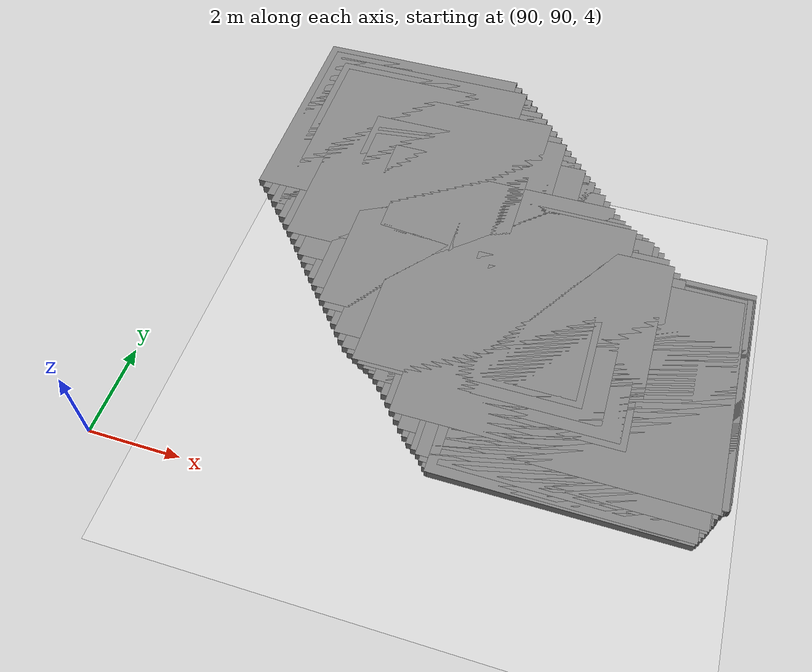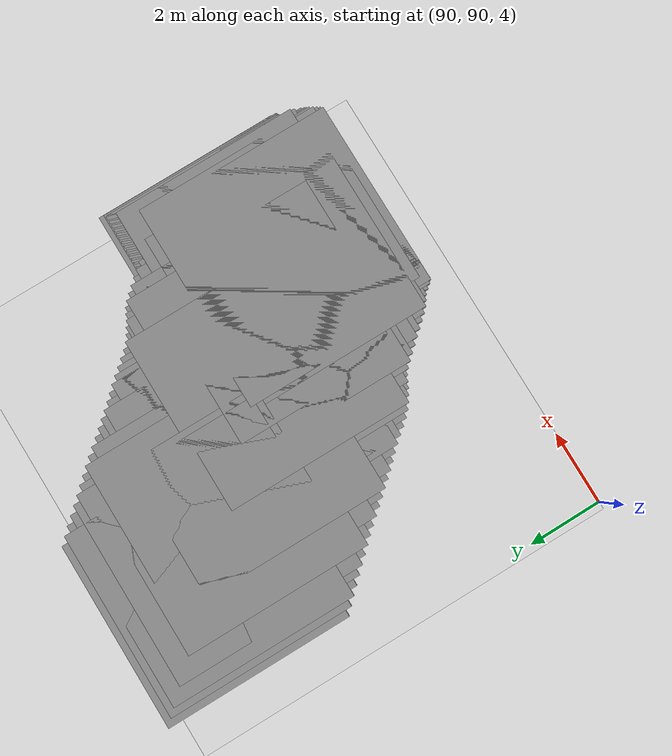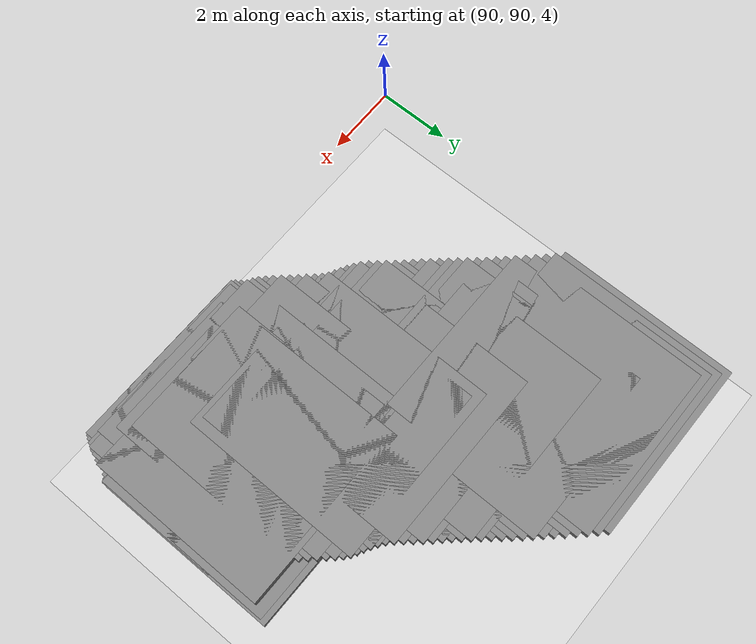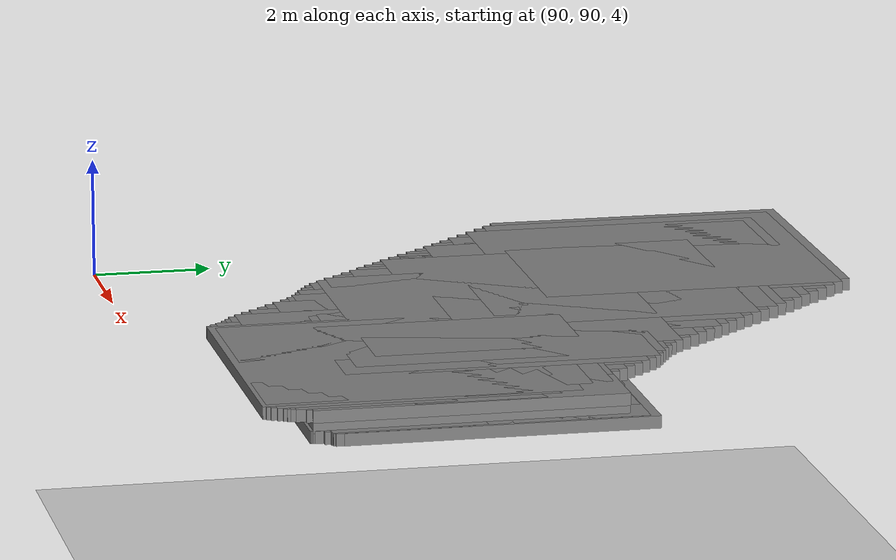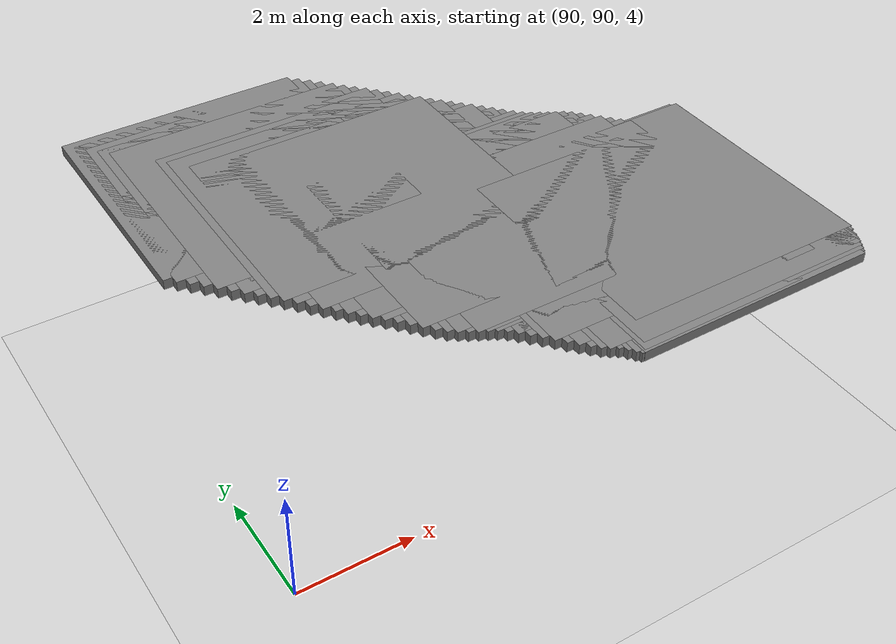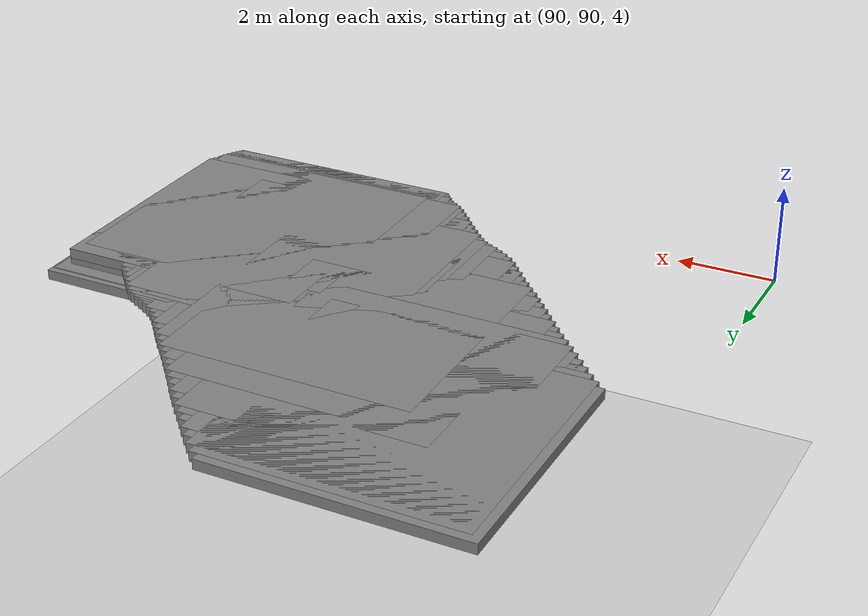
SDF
<sdf version="1.6">
 <world name="default">
  <include><uri>model://sun</uri></include>
  <include><uri>model://ground_plane</uri></include>
  <model name="road_segment_1">
   <static>true</static>
   <link name="link">
    <visual name="visual">
     <geometry><box><size>5.0 5.0 0.2</size></box></geometry>
     <material><ambient>0.5 0.5 0.5 1</ambient><diffuse>0.5 0.5 0.5 1</diffuse></material>
     <pose>99.99919580901489 94.41162049521488 4.367173193083842 0 0 0</pose>
    </visual>
    <collision name="collision">
     <geometry><box><size>5.0 5.0 0.2</size></box></geometry>
     <pose>99.99919580901489 94.41162049521488 4.367173193083842 0 0 0</pose>
    </collision>
   </link>
  </model>
  <model name="road_segment_2">
   <static>true</static>
   <link name="link">
    <visual name="visual">
     <geometry><box><size>5.0 5.0 0.2</size></box></geometry>
     <material><ambient>0.5 0.5 0.5 1</ambient><diffuse>0.5 0.5 0.5 1</diffuse></material>
     <pose>99.98874132622485 94.27984800195918 4.367173193083842 0 0 0</pose>
    </visual>
    <collision name="collision">
     <geometry><box><size>5.0 5.0 0.2</size></box></geometry>
     <pose>99.98874132622485 94.27984800195918 4.367173193083842 0 0 0</pose>
    </collision>
   </link>
  </model>
  <model name="road_segment_3">
   <static>true</static>
   <link name="link">
    <visual name="visual">
     <geometry><box><size>5.0 5.0 0.2</size></box></geometry>
     <material><ambient>0.5 0.5 0.5 1</ambient><diffuse>0.5 0.5 0.5 1</diffuse></material>
     <pose>99.97162354671508 94.24981613140372 4.367173193083842 0 0 0</pose>
    </visual>
    <collision name="collision">
     <geometry><box><size>5.0 5.0 0.2</size></box></geometry>
     <pose>99.97162354671508 94.24981613140372 4.367173193083842 0 0 0</pose>
    </collision>
   </link>
  </model>
  <model name="road_segment_4">
   <static>true</static>
   <link name="link">
    <visual name="visual">
     <geometry><box><size>5.0 5.0 0.2</size></box></geometry>
     <material><ambient>0.5 0.5 0.5 1</ambient><diffuse>0.5 0.5 0.5 1</diffuse></material>
     <pose>99.95933091309962 94.24634305793734 4.367173193083842 0 0 0</pose>
    </visual>
    <collision name="collision">
     <geometry><box><size>5.0 5.0 0.2</size></box></geometry>
     <pose>99.95933091309962 94.24634305793734 4.367173193083842 0 0 0</pose>
    </collision>
   </link>
  </model>
  <model name="road_segment_5">
   <static>true</static>
   <link name="link">
    <visual name="visual">
     <geometry><box><size>5.0 5.0 0.2</size></box></geometry>
     <material><ambient>0.5 0.5 0.5 1</ambient><diffuse>0.5 0.5 0.5 1</diffuse></material>
     <pose>99.94945085243947 94.2510419220385 4.367173193083842 0 0 0</pose>
    </visual>
    <collision name="collision">
     <geometry><box><size>5.0 5.0 0.2</size></box></geometry>
     <pose>99.94945085243947 94.2510419220385 4.367173193083842 0 0 0</pose>
    </collision>
   </link>
  </model>
  <model name="road_segment_6">
   <static>true</static>
   <link name="link">
    <visual name="visual">
     <geometry><box><size>5.0 5.0 0.2</size></box></geometry>
     <material><ambient>0.5 0.5 0.5 1</ambient><diffuse>0.5 0.5 0.5 1</diffuse></material>
     <pose>99.94060475161965 94.25553648769811 4.367173193083842 0 0 0</pose>
    </visual>
    <collision name="collision">
     <geometry><box><size>5.0 5.0 0.2</size></box></geometry>
     <pose>99.94060475161965 94.25553648769811 4.367173193083842 0 0 0</pose>
    </collision>
   </link>
  </model>
  <model name="road_segment_7">
   <static>true</static>
   <link name="link">
    <visual name="visual">
     <geometry><box><size>5.0 5.0 0.2</size></box></geometry>
     <material><ambient>0.5 0.5 0.5 1</ambient><diffuse>0.5 0.5 0.5 1</diffuse></material>
     <pose>99.94726804833937 94.25288060798702 4.367173193083842 0 0 0</pose>
    </visual>
    <collision name="collision">
     <geometry><box><size>5.0 5.0 0.2</size></box></geometry>
     <pose>99.94726804833937 94.25288060798702 4.367173193083842 0 0 0</pose>
    </collision>
   </link>
  </model>
  <model name="road_segment_8">
   <static>true</static>
   <link name="link">
    <visual name="visual">
     <geometry><box><size>5.0 5.0 0.2</size></box></geometry>
     <material><ambient>0.5 0.5 0.5 1</ambient><diffuse>0.5 0.5 0.5 1</diffuse></material>
     <pose>99.95749276227419 94.24879463920325 4.367173193083842 0 0 0</pose>
    </visual>
    <collision name="collision">
     <geometry><box><size>5.0 5.0 0.2</size></box></geometry>
     <pose>99.95749276227419 94.24879463920325 4.367173193083842 0 0 0</pose>
    </collision>
   </link>
  </model>
  <model name="road_segment_9">
   <static>true</static>
   <link name="link">
    <visual name="visual">
     <geometry><box><size>5.0 5.0 0.2</size></box></geometry>
     <material><ambient>0.5 0.5 0.5 1</ambient><diffuse>0.5 0.5 0.5 1</diffuse></material>
     <pose>99.95599926472343 94.24491296886103 4.367173193083842 0 0 0</pose>
    </visual>
    <collision name="collision">
     <geometry><box><size>5.0 5.0 0.2</size></box></geometry>
     <pose>99.95599926472343 94.24491296886103 4.367173193083842 0 0 0</pose>
    </collision>
   </link>
  </model>
  <model name="road_segment_10">
   <static>true</static>
   <link name="link">
    <visual name="visual">
     <geometry><box><size>5.0 5.0 0.2</size></box></geometry>
     <material><ambient>0.5 0.5 0.5 1</ambient><diffuse>0.5 0.5 0.5 1</diffuse></material>
     <pose>99.94807223930815 94.24654735637526 4.367173193083842 0 0 0</pose>
    </visual>
    <collision name="collision">
     <geometry><box><size>5.0 5.0 0.2</size></box></geometry>
     <pose>99.94807223930815 94.24654735637526 4.367173193083842 0 0 0</pose>
    </collision>
   </link>
  </model>
  <model name="road_segment_11">
   <static>true</static>
   <link name="link">
    <visual name="visual">
     <geometry><box><size>5.0 5.0 0.2</size></box></geometry>
     <material><ambient>0.5 0.5 0.5 1</ambient><diffuse>0.5 0.5 0.5 1</diffuse></material>
     <pose>99.93968567619876 94.24920323608272 4.367173193083842 0 0 0</pose>
    </visual>
    <collision name="collision">
     <geometry><box><size>5.0 5.0 0.2</size></box></geometry>
     <pose>99.93968567619876 94.24920323608272 4.367173193083842 0 0 0</pose>
    </collision>
   </link>
  </model>
  <model name="road_segment_12">
   <static>true</static>
   <link name="link">
    <visual name="visual">
     <geometry><box><size>5.0 5.0 0.2</size></box></geometry>
     <material><ambient>0.5 0.5 0.5 1</ambient><diffuse>0.5 0.5 0.5 1</diffuse></material>
     <pose>99.93704333440456 94.24511726729895 4.367173193083842 0 0 0</pose>
    </visual>
    <collision name="collision">
     <geometry><box><size>5.0 5.0 0.2</size></box></geometry>
     <pose>99.93704333440456 94.24511726729895 4.367173193083842 0 0 0</pose>
    </collision>
   </link>
  </model>
  <model name="road_segment_13">
   <static>true</static>
   <link name="link">
    <visual name="visual">
     <geometry><box><size>5.0 5.0 0.2</size></box></geometry>
     <material><ambient>0.5 0.5 0.5 1</ambient><diffuse>0.5 0.5 0.5 1</diffuse></material>
     <pose>99.93382657046413 94.23980550788403 4.367173193083842 0 0 0</pose>
    </visual>
    <collision name="collision">
     <geometry><box><size>5.0 5.0 0.2</size></box></geometry>
     <pose>99.93382657046413 94.23980550788403 4.367173193083842 0 0 0</pose>
    </collision>
   </link>
  </model>
  <model name="road_segment_14">
   <static>true</static>
   <link name="link">
    <visual name="visual">
     <geometry><box><size>5.0 5.0 0.2</size></box></geometry>
     <material><ambient>0.5 0.5 0.5 1</ambient><diffuse>0.5 0.5 0.5 1</diffuse></material>
     <pose>99.9281972335684 94.23224646563752 4.367173193083842 0 0 0</pose>
    </visual>
    <collision name="collision">
     <geometry><box><size>5.0 5.0 0.2</size></box></geometry>
     <pose>99.9281972335684 94.23224646563752 4.367173193083842 0 0 0</pose>
    </collision>
   </link>
  </model>
  <model name="road_segment_15">
   <static>true</static>
   <link name="link">
    <visual name="visual">
     <geometry><box><size>5.0 5.0 0.2</size></box></geometry>
     <material><ambient>0.5 0.5 0.5 1</ambient><diffuse>0.5 0.5 0.5 1</diffuse></material>
     <pose>99.92325720323834 94.22734330309481 4.367173193083842 0 0 0</pose>
    </visual>
    <collision name="collision">
     <geometry><box><size>5.0 5.0 0.2</size></box></geometry>
     <pose>99.92325720323834 94.22734330309481 4.367173193083842 0 0 0</pose>
    </collision>
   </link>
  </model>
  <model name="road_segment_16">
   <static>true</static>
   <link name="link">
    <visual name="visual">
     <geometry><box><size>5.0 5.0 0.2</size></box></geometry>
     <material><ambient>0.5 0.5 0.5 1</ambient><diffuse>0.5 0.5 0.5 1</diffuse></material>
     <pose>99.91728321306792 94.22121434991735 4.367173193083842 0 0 0</pose>
    </visual>
    <collision name="collision">
     <geometry><box><size>5.0 5.0 0.2</size></box></geometry>
     <pose>99.91728321306792 94.22121434991735 4.367173193083842 0 0 0</pose>
    </collision>
   </link>
  </model>
  <model name="road_segment_17">
   <static>true</static>
   <link name="link">
    <visual name="visual">
     <geometry><box><size>5.0 5.0 0.2</size></box></geometry>
     <material><ambient>0.5 0.5 0.5 1</ambient><diffuse>0.5 0.5 0.5 1</diffuse></material>
     <pose>99.85708377370247 94.13152733512686 4.367173193083842 0 0 0</pose>
    </visual>
    <collision name="collision">
     <geometry><box><size>5.0 5.0 0.2</size></box></geometry>
     <pose>99.85708377370247 94.13152733512686 4.367173193083842 0 0 0</pose>
    </collision>
   </link>
  </model>
  <model name="road_segment_18">
   <static>true</static>
   <link name="link">
    <visual name="visual">
     <geometry><box><size>5.0 5.0 0.2</size></box></geometry>
     <material><ambient>0.5 0.5 0.5 1</ambient><diffuse>0.5 0.5 0.5 1</diffuse></material>
     <pose>99.77758375072713 93.99342159025576 4.367173193083842 0 0 0</pose>
    </visual>
    <collision name="collision">
     <geometry><box><size>5.0 5.0 0.2</size></box></geometry>
     <pose>99.77758375072713 93.99342159025576 4.367173193083842 0 0 0</pose>
    </collision>
   </link>
  </model>
  <model name="road_segment_19">
   <static>true</static>
   <link name="link">
    <visual name="visual">
     <geometry><box><size>5.0 5.0 0.2</size></box></geometry>
     <material><ambient>0.5 0.5 0.5 1</ambient><diffuse>0.5 0.5 0.5 1</diffuse></material>
     <pose>99.74886264416756 93.9241644193805 4.367173193083842 0 0 0</pose>
    </visual>
    <collision name="collision">
     <geometry><box><size>5.0 5.0 0.2</size></box></geometry>
     <pose>99.74886264416756 93.9241644193805 4.367173193083842 0 0 0</pose>
    </collision>
   </link>
  </model>
  <model name="road_segment_20">
   <static>true</static>
   <link name="link">
    <visual name="visual">
     <geometry><box><size>5.0 5.0 0.2</size></box></geometry>
     <material><ambient>0.5 0.5 0.5 1</ambient><diffuse>0.5 0.5 0.5 1</diffuse></material>
     <pose>99.74599053351812 93.91987415215881 4.367173193083842 0 0 0</pose>
    </visual>
    <collision name="collision">
     <geometry><box><size>5.0 5.0 0.2</size></box></geometry>
     <pose>99.74599053351812 93.91987415215881 4.367173193083842 0 0 0</pose>
    </collision>
   </link>
  </model>
  <model name="road_segment_21">
   <static>true</static>
   <link name="link">
    <visual name="visual">
     <geometry><box><size>5.0 5.0 0.2</size></box></geometry>
     <material><ambient>0.5 0.5 0.5 1</ambient><diffuse>0.5 0.5 0.5 1</diffuse></material>
     <pose>99.75196452368854 93.93499223665549 4.367173193083842 0 0 0</pose>
    </visual>
    <collision name="collision">
     <geometry><box><size>5.0 5.0 0.2</size></box></geometry>
     <pose>99.75196452368854 93.93499223665549 4.367173193083842 0 0 0</pose>
    </collision>
   </link>
  </model>
  <model name="road_segment_22">
   <static>true</static>
   <link name="link">
    <visual name="visual">
     <geometry><box><size>5.0 5.0 0.2</size></box></geometry>
     <material><ambient>0.5 0.5 0.5 1</ambient><diffuse>0.5 0.5 0.5 1</diffuse></material>
     <pose>99.75701943843806 93.95154041022849 4.367173193083842 0 0 0</pose>
    </visual>
    <collision name="collision">
     <geometry><box><size>5.0 5.0 0.2</size></box></geometry>
     <pose>99.75701943843806 93.95154041022849 4.367173193083842 0 0 0</pose>
    </collision>
   </link>
  </model>
  <model name="road_segment_23">
   <static>true</static>
   <link name="link">
    <visual name="visual">
     <geometry><box><size>5.0 5.0 0.2</size></box></geometry>
     <material><ambient>0.5 0.5 0.5 1</ambient><diffuse>0.5 0.5 0.5 1</diffuse></material>
     <pose>99.75943201137704 93.96543270409404 4.367173193083842 0 0 0</pose>
    </visual>
    <collision name="collision">
     <geometry><box><size>5.0 5.0 0.2</size></box></geometry>
     <pose>99.75943201137704 93.96543270409404 4.367173193083842 0 0 0</pose>
    </collision>
   </link>
  </model>
  <model name="road_segment_24">
   <static>true</static>
   <link name="link">
    <visual name="visual">
     <geometry><box><size>5.0 5.0 0.2</size></box></geometry>
     <material><ambient>0.5 0.5 0.5 1</ambient><diffuse>0.5 0.5 0.5 1</diffuse></material>
     <pose>99.76161481547715 93.96767998692202 4.367173193083842 0 0 0</pose>
    </visual>
    <collision name="collision">
     <geometry><box><size>5.0 5.0 0.2</size></box></geometry>
     <pose>99.76161481547715 93.96767998692202 4.367173193083842 0 0 0</pose>
    </collision>
   </link>
  </model>
  <model name="road_segment_25">
   <static>true</static>
   <link name="link">
    <visual name="visual">
     <geometry><box><size>5.0 5.0 0.2</size></box></geometry>
     <material><ambient>0.5 0.5 0.5 1</ambient><diffuse>0.5 0.5 0.5 1</diffuse></material>
     <pose>99.76264877531746 93.96727139004255 4.367173193083842 0 0 0</pose>
    </visual>
    <collision name="collision">
     <geometry><box><size>5.0 5.0 0.2</size></box></geometry>
     <pose>99.76264877531746 93.96727139004255 4.367173193083842 0 0 0</pose>
    </collision>
   </link>
  </model>
  <model name="road_segment_26">
   <static>true</static>
   <link name="link">
    <visual name="visual">
     <geometry><box><size>5.0 5.0 0.2</size></box></geometry>
     <material><ambient>0.5 0.5 0.5 1</ambient><diffuse>0.5 0.5 0.5 1</diffuse></material>
     <pose>99.76299342859213 93.97013156819156 4.529971770583577 0 0 0</pose>
    </visual>
    <collision name="collision">
     <geometry><box><size>5.0 5.0 0.2</size></box></geometry>
     <pose>99.76299342859213 93.97013156819156 4.529971770583577 0 0 0</pose>
    </collision>
   </link>
  </model>
  <model name="road_segment_27">
   <static>true</static>
   <link name="link">
    <visual name="visual">
     <geometry><box><size>5.0 5.0 0.2</size></box></geometry>
     <material><ambient>0.5 0.5 0.5 1</ambient><diffuse>0.5 0.5 0.5 1</diffuse></material>
     <pose>99.76471669498179 93.97340034321638 4.692770348083311 0 0 0</pose>
    </visual>
    <collision name="collision">
     <geometry><box><size>5.0 5.0 0.2</size></box></geometry>
     <pose>99.76471669498179 93.97340034321638 4.692770348083311 0 0 0</pose>
    </collision>
   </link>
  </model>
  <model name="road_segment_28">
   <static>true</static>
   <link name="link">
    <visual name="visual">
     <geometry><box><size>5.0 5.0 0.2</size></box></geometry>
     <material><ambient>0.5 0.5 0.5 1</ambient><diffuse>0.5 0.5 0.5 1</diffuse></material>
     <pose>99.76655484580722 93.97258314946109 4.692770348083311 0 0 0</pose>
    </visual>
    <collision name="collision">
     <geometry><box><size>5.0 5.0 0.2</size></box></geometry>
     <pose>99.76655484580722 93.97258314946109 4.692770348083311 0 0 0</pose>
    </collision>
   </link>
  </model>
  <model name="road_segment_29">
   <static>true</static>
   <link name="link">
    <visual name="visual">
     <geometry><box><size>5.0 5.0 0.2</size></box></geometry>
     <material><ambient>0.5 0.5 0.5 1</ambient><diffuse>0.5 0.5 0.5 1</diffuse></material>
     <pose>99.7668994990982 93.97033586663309 4.692770348083311 0 0 0</pose>
    </visual>
    <collision name="collision">
     <geometry><box><size>5.0 5.0 0.2</size></box></geometry>
     <pose>99.7668994990982 93.97033586663309 4.692770348083311 0 0 0</pose>
    </collision>
   </link>
  </model>
  <model name="road_segment_30">
   <static>true</static>
   <link name="link">
    <visual name="visual">
     <geometry><box><size>5.0 5.0 0.2</size></box></geometry>
     <material><ambient>0.5 0.5 0.5 1</ambient><diffuse>0.5 0.5 0.5 1</diffuse></material>
     <pose>99.76724415237288 93.97054016507101 4.692770348083311 0 0 0</pose>
    </visual>
    <collision name="collision">
     <geometry><box><size>5.0 5.0 0.2</size></box></geometry>
     <pose>99.76724415237288 93.97054016507101 4.692770348083311 0 0 0</pose>
    </collision>
   </link>
  </model>
  <model name="road_segment_31">
   <static>true</static>
   <link name="link">
    <visual name="visual">
     <geometry><box><size>5.0 5.0 0.2</size></box></geometry>
     <material><ambient>0.5 0.5 0.5 1</ambient><diffuse>0.5 0.5 0.5 1</diffuse></material>
     <pose>99.72324341711263 93.8749284955446 4.692770348083311 0 0 0</pose>
    </visual>
    <collision name="collision">
     <geometry><box><size>5.0 5.0 0.2</size></box></geometry>
     <pose>99.72324341711263 93.8749284955446 4.692770348083311 0 0 0</pose>
    </collision>
   </link>
  </model>
  <model name="road_segment_32">
   <static>true</static>
   <link name="link">
    <visual name="visual">
     <geometry><box><size>5.0 5.0 0.2</size></box></geometry>
     <material><ambient>0.5 0.5 0.5 1</ambient><diffuse>0.5 0.5 0.5 1</diffuse></material>
     <pose>99.65741464086776 93.72354335212898 4.692770348083311 0 0 0</pose>
    </visual>
    <collision name="collision">
     <geometry><box><size>5.0 5.0 0.2</size></box></geometry>
     <pose>99.65741464086776 93.72354335212898 4.692770348083311 0 0 0</pose>
    </collision>
   </link>
  </model>
  <model name="road_segment_33">
   <static>true</static>
   <link name="link">
    <visual name="visual">
     <geometry><box><size>5.0 5.0 0.2</size></box></geometry>
     <material><ambient>0.5 0.5 0.5 1</ambient><diffuse>0.5 0.5 0.5 1</diffuse></material>
     <pose>99.62294931297669 93.64488845305141 4.692770348083311 0 0 0</pose>
    </visual>
    <collision name="collision">
     <geometry><box><size>5.0 5.0 0.2</size></box></geometry>
     <pose>99.62294931297669 93.64488845305141 4.692770348083311 0 0 0</pose>
    </collision>
   </link>
  </model>
  <model name="road_segment_34">
   <static>true</static>
   <link name="link">
    <visual name="visual">
     <geometry><box><size>5.0 5.0 0.2</size></box></geometry>
     <material><ambient>0.5 0.5 0.5 1</ambient><diffuse>0.5 0.5 0.5 1</diffuse></material>
     <pose>99.59939800558607 93.59728691672612 4.692770348083311 0 0 0</pose>
    </visual>
    <collision name="collision">
     <geometry><box><size>5.0 5.0 0.2</size></box></geometry>
     <pose>99.59939800558607 93.59728691672612 4.692770348083311 0 0 0</pose>
    </collision>
   </link>
  </model>
  <model name="road_segment_35">
   <static>true</static>
   <link name="link">
    <visual name="visual">
     <geometry><box><size>5.0 5.0 0.2</size></box></geometry>
     <material><ambient>0.5 0.5 0.5 1</ambient><diffuse>0.5 0.5 0.5 1</diffuse></material>
     <pose>99.57297458754604 93.54049195064007 4.692770348083311 0 0 0</pose>
    </visual>
    <collision name="collision">
     <geometry><box><size>5.0 5.0 0.2</size></box></geometry>
     <pose>99.57297458754604 93.54049195064007 4.692770348083311 0 0 0</pose>
    </collision>
   </link>
  </model>
  <model name="road_segment_36">
   <static>true</static>
   <link name="link">
    <visual name="visual">
     <geometry><box><size>5.0 5.0 0.2</size></box></geometry>
     <material><ambient>0.5 0.5 0.5 1</ambient><diffuse>0.5 0.5 0.5 1</diffuse></material>
     <pose>99.52748035475136 93.45570809838866 4.692770348083311 0 0 0</pose>
    </visual>
    <collision name="collision">
     <geometry><box><size>5.0 5.0 0.2</size></box></geometry>
     <pose>99.52748035475136 93.45570809838866 4.692770348083311 0 0 0</pose>
    </collision>
   </link>
  </model>
  <model name="road_segment_37">
   <static>true</static>
   <link name="link">
    <visual name="visual">
     <geometry><box><size>5.0 5.0 0.2</size></box></geometry>
     <material><ambient>0.5 0.5 0.5 1</ambient><diffuse>0.5 0.5 0.5 1</diffuse></material>
     <pose>99.47417398096084 93.36867696330562 4.692770348083311 0 0 0</pose>
    </visual>
    <collision name="collision">
     <geometry><box><size>5.0 5.0 0.2</size></box></geometry>
     <pose>99.47417398096084 93.36867696330562 4.692770348083311 0 0 0</pose>
    </collision>
   </link>
  </model>
  <model name="road_segment_38">
   <static>true</static>
   <link name="link">
    <visual name="visual">
     <geometry><box><size>5.0 5.0 0.2</size></box></geometry>
     <material><ambient>0.5 0.5 0.5 1</ambient><diffuse>0.5 0.5 0.5 1</diffuse></material>
     <pose>99.42833509487517 93.30146277682042 4.692770348083311 0 0 0</pose>
    </visual>
    <collision name="collision">
     <geometry><box><size>5.0 5.0 0.2</size></box></geometry>
     <pose>99.42833509487517 93.30146277682042 4.692770348083311 0 0 0</pose>
    </collision>
   </link>
  </model>
  <model name="road_segment_39">
   <static>true</static>
   <link name="link">
    <visual name="visual">
     <geometry><box><size>5.0 5.0 0.2</size></box></geometry>
     <material><ambient>0.5 0.5 0.5 1</ambient><diffuse>0.5 0.5 0.5 1</diffuse></material>
     <pose>99.38421947519548 93.24977527171137 4.692770348083311 0 0 0</pose>
    </visual>
    <collision name="collision">
     <geometry><box><size>5.0 5.0 0.2</size></box></geometry>
     <pose>99.38421947519548 93.24977527171137 4.692770348083311 0 0 0</pose>
    </collision>
   </link>
  </model>
  <model name="road_segment_40">
   <static>true</static>
   <link name="link">
    <visual name="visual">
     <geometry><box><size>5.0 5.0 0.2</size></box></geometry>
     <material><ambient>0.5 0.5 0.5 1</ambient><diffuse>0.5 0.5 0.5 1</diffuse></material>
     <pose>99.33401498092593 93.25447413581252 4.692770348083311 0 0 0</pose>
    </visual>
    <collision name="collision">
     <geometry><box><size>5.0 5.0 0.2</size></box></geometry>
     <pose>99.33401498092593 93.25447413581252 4.692770348083311 0 0 0</pose>
    </collision>
   </link>
  </model>
  <model name="road_segment_41">
   <static>true</static>
   <link name="link">
    <visual name="visual">
     <geometry><box><size>5.0 5.0 0.2</size></box></geometry>
     <material><ambient>0.5 0.5 0.5 1</ambient><diffuse>0.5 0.5 0.5 1</diffuse></material>
     <pose>99.26232709893011 93.32230121761509 4.692770348083311 0 0 0</pose>
    </visual>
    <collision name="collision">
     <geometry><box><size>5.0 5.0 0.2</size></box></geometry>
     <pose>99.26232709893011 93.32230121761509 4.692770348083311 0 0 0</pose>
    </collision>
   </link>
  </model>
  <model name="road_segment_42">
   <static>true</static>
   <link name="link">
    <visual name="visual">
     <geometry><box><size>5.0 5.0 0.2</size></box></geometry>
     <material><ambient>0.5 0.5 0.5 1</ambient><diffuse>0.5 0.5 0.5 1</diffuse></material>
     <pose>99.17524470381417 93.42996649505491 4.692770348083311 0 0 0</pose>
    </visual>
    <collision name="collision">
     <geometry><box><size>5.0 5.0 0.2</size></box></geometry>
     <pose>99.17524470381417 93.42996649505491 4.692770348083311 0 0 0</pose>
    </collision>
   </link>
  </model>
  <model name="road_segment_43">
   <static>true</static>
   <link name="link">
    <visual name="visual">
     <geometry><box><size>5.0 5.0 0.2</size></box></geometry>
     <material><ambient>0.5 0.5 0.5 1</ambient><diffuse>0.5 0.5 0.5 1</diffuse></material>
     <pose>99.07242314230346 93.54008335376062 4.692770348083311 0 0 0</pose>
    </visual>
    <collision name="collision">
     <geometry><box><size>5.0 5.0 0.2</size></box></geometry>
     <pose>99.07242314230346 93.54008335376062 4.692770348083311 0 0 0</pose>
    </collision>
   </link>
  </model>
  <model name="road_segment_44">
   <static>true</static>
   <link name="link">
    <visual name="visual">
     <geometry><box><size>5.0 5.0 0.2</size></box></geometry>
     <material><ambient>0.5 0.5 0.5 1</ambient><diffuse>0.5 0.5 0.5 1</diffuse></material>
     <pose>98.95328799226809 93.61730816376188 4.692770348083311 0 0 0</pose>
    </visual>
    <collision name="collision">
     <geometry><box><size>5.0 5.0 0.2</size></box></geometry>
     <pose>98.95328799226809 93.61730816376188 4.692770348083311 0 0 0</pose>
    </collision>
   </link>
  </model>
  <model name="road_segment_45">
   <static>true</static>
   <link name="link">
    <visual name="visual">
     <geometry><box><size>5.0 5.0 0.2</size></box></geometry>
     <material><ambient>0.5 0.5 0.5 1</ambient><diffuse>0.5 0.5 0.5 1</diffuse></material>
     <pose>98.83242957584305 93.70270491133068 4.692770348083311 0 0 0</pose>
    </visual>
    <collision name="collision">
     <geometry><box><size>5.0 5.0 0.2</size></box></geometry>
     <pose>98.83242957584305 93.70270491133068 4.692770348083311 0 0 0</pose>
    </collision>
   </link>
  </model>
  <model name="road_segment_46">
   <static>true</static>
   <link name="link">
    <visual name="visual">
     <geometry><box><size>5.0 5.0 0.2</size></box></geometry>
     <material><ambient>0.5 0.5 0.5 1</ambient><diffuse>0.5 0.5 0.5 1</diffuse></material>
     <pose>98.70835439547758 93.82262809511818 4.692770348083311 0 0 0</pose>
    </visual>
    <collision name="collision">
     <geometry><box><size>5.0 5.0 0.2</size></box></geometry>
     <pose>98.70835439547758 93.82262809511818 4.692770348083311 0 0 0</pose>
    </collision>
   </link>
  </model>
  <model name="road_segment_47">
   <static>true</static>
   <link name="link">
    <visual name="visual">
     <geometry><box><size>5.0 5.0 0.2</size></box></geometry>
     <material><ambient>0.5 0.5 0.5 1</ambient><diffuse>0.5 0.5 0.5 1</diffuse></material>
     <pose>98.57796057166706 93.96134673531026 4.692770348083311 0 0 0</pose>
    </visual>
    <collision name="collision">
     <geometry><box><size>5.0 5.0 0.2</size></box></geometry>
     <pose>98.57796057166706 93.96134673531026 4.692770348083311 0 0 0</pose>
    </collision>
   </link>
  </model>
  <model name="road_segment_48">
   <static>true</static>
   <link name="link">
    <visual name="visual">
     <geometry><box><size>5.0 5.0 0.2</size></box></geometry>
     <material><ambient>0.5 0.5 0.5 1</ambient><diffuse>0.5 0.5 0.5 1</diffuse></material>
     <pose>98.44297137080113 94.11252758028795 4.692770348083311 0 0 0</pose>
    </visual>
    <collision name="collision">
     <geometry><box><size>5.0 5.0 0.2</size></box></geometry>
     <pose>98.44297137080113 94.11252758028795 4.692770348083311 0 0 0</pose>
    </collision>
   </link>
  </model>
  <model name="road_segment_49">
   <static>true</static>
   <link name="link">
    <visual name="visual">
     <geometry><box><size>5.0 5.0 0.2</size></box></geometry>
     <material><ambient>0.5 0.5 0.5 1</ambient><diffuse>0.5 0.5 0.5 1</diffuse></material>
     <pose>98.30465052157534 94.2684072893668 4.692770348083311 0 0 0</pose>
    </visual>
    <collision name="collision">
     <geometry><box><size>5.0 5.0 0.2</size></box></geometry>
     <pose>98.30465052157534 94.2684072893668 4.692770348083311 0 0 0</pose>
    </collision>
   </link>
  </model>
  <model name="road_segment_50">
   <static>true</static>
   <link name="link">
    <visual name="visual">
     <geometry><box><size>5.0 5.0 0.2</size></box></geometry>
     <material><ambient>0.5 0.5 0.5 1</ambient><diffuse>0.5 0.5 0.5 1</diffuse></material>
     <pose>98.16518082807345 94.42489989376304 4.692770348083311 0 0 0</pose>
    </visual>
    <collision name="collision">
     <geometry><box><size>5.0 5.0 0.2</size></box></geometry>
     <pose>98.16518082807345 94.42489989376304 4.692770348083311 0 0 0</pose>
    </collision>
   </link>
  </model>
  <model name="road_segment_51">
   <static>true</static>
   <link name="link">
    <visual name="visual">
     <geometry><box><size>5.0 5.0 0.2</size></box></geometry>
     <material><ambient>0.5 0.5 0.5 1</ambient><diffuse>0.5 0.5 0.5 1</diffuse></material>
     <pose>98.02789393867164 94.57975811064503 4.692770348083311 0 0 0</pose>
    </visual>
    <collision name="collision">
     <geometry><box><size>5.0 5.0 0.2</size></box></geometry>
     <pose>98.02789393867164 94.57975811064503 4.692770348083311 0 0 0</pose>
    </collision>
   </link>
  </model>
  <model name="road_segment_52">
   <static>true</static>
   <link name="link">
    <visual name="visual">
     <geometry><box><size>5.0 5.0 0.2</size></box></geometry>
     <material><ambient>0.5 0.5 0.5 1</ambient><diffuse>0.5 0.5 0.5 1</diffuse></material>
     <pose>97.89267496896682 94.72807877747371 4.692770348083311 0 0 0</pose>
    </visual>
    <collision name="collision">
     <geometry><box><size>5.0 5.0 0.2</size></box></geometry>
     <pose>97.89267496896682 94.72807877747371 4.692770348083311 0 0 0</pose>
    </collision>
   </link>
  </model>
  <model name="road_segment_53">
   <static>true</static>
   <link name="link">
    <visual name="visual">
     <geometry><box><size>5.0 5.0 0.2</size></box></geometry>
     <material><ambient>0.5 0.5 0.5 1</ambient><diffuse>0.5 0.5 0.5 1</diffuse></material>
     <pose>97.76205137630109 94.86271144888204 4.692770348083311 0 0 0</pose>
    </visual>
    <collision name="collision">
     <geometry><box><size>5.0 5.0 0.2</size></box></geometry>
     <pose>97.76205137630109 94.86271144888204 4.692770348083311 0 0 0</pose>
    </collision>
   </link>
  </model>
  <model name="road_segment_54">
   <static>true</static>
   <link name="link">
    <visual name="visual">
     <geometry><box><size>5.0 5.0 0.2</size></box></geometry>
     <material><ambient>0.5 0.5 0.5 1</ambient><diffuse>0.5 0.5 0.5 1</diffuse></material>
     <pose>97.63188732132944 94.96833374192815 4.692770348083311 0 0 0</pose>
    </visual>
    <collision name="collision">
     <geometry><box><size>5.0 5.0 0.2</size></box></geometry>
     <pose>97.63188732132944 94.96833374192815 4.692770348083311 0 0 0</pose>
    </collision>
   </link>
  </model>
  <model name="road_segment_55">
   <static>true</static>
   <link name="link">
    <visual name="visual">
     <geometry><box><size>5.0 5.0 0.2</size></box></geometry>
     <material><ambient>0.5 0.5 0.5 1</ambient><diffuse>0.5 0.5 0.5 1</diffuse></material>
     <pose>97.49460043194398 95.04433276129464 4.692770348083311 0 0 0</pose>
    </visual>
    <collision name="collision">
     <geometry><box><size>5.0 5.0 0.2</size></box></geometry>
     <pose>97.49460043194398 95.04433276129464 4.692770348083311 0 0 0</pose>
    </collision>
   </link>
  </model>
  <model name="road_segment_56">
   <static>true</static>
   <link name="link">
    <visual name="visual">
     <geometry><box><size>5.0 5.0 0.2</size></box></geometry>
     <material><ambient>0.5 0.5 0.5 1</ambient><diffuse>0.5 0.5 0.5 1</diffuse></material>
     <pose>97.35099489911343 95.11604151343946 4.692770348083311 0 0 0</pose>
    </visual>
    <collision name="collision">
     <geometry><box><size>5.0 5.0 0.2</size></box></geometry>
     <pose>97.35099489911343 95.11604151343946 4.692770348083311 0 0 0</pose>
    </collision>
   </link>
  </model>
  <model name="road_segment_57">
   <static>true</static>
   <link name="link">
    <visual name="visual">
     <geometry><box><size>5.0 5.0 0.2</size></box></geometry>
     <material><ambient>0.5 0.5 0.5 1</ambient><diffuse>0.5 0.5 0.5 1</diffuse></material>
     <pose>97.20509167776336 95.20082536569087 4.692770348083311 0 0 0</pose>
    </visual>
    <collision name="collision">
     <geometry><box><size>5.0 5.0 0.2</size></box></geometry>
     <pose>97.20509167776336 95.20082536569087 4.692770348083311 0 0 0</pose>
    </collision>
   </link>
  </model>
  <model name="road_segment_58">
   <static>true</static>
   <link name="link">
    <visual name="visual">
     <geometry><box><size>5.0 5.0 0.2</size></box></geometry>
     <material><ambient>0.5 0.5 0.5 1</ambient><diffuse>0.5 0.5 0.5 1</diffuse></material>
     <pose>97.05620146132807 95.29255536487506 4.692770348083311 0 0 0</pose>
    </visual>
    <collision name="collision">
     <geometry><box><size>5.0 5.0 0.2</size></box></geometry>
     <pose>97.05620146132807 95.29255536487506 4.692770348083311 0 0 0</pose>
    </collision>
   </link>
  </model>
  <model name="road_segment_59">
   <static>true</static>
   <link name="link">
    <visual name="visual">
     <geometry><box><size>5.0 5.0 0.2</size></box></geometry>
     <material><ambient>0.5 0.5 0.5 1</ambient><diffuse>0.5 0.5 0.5 1</diffuse></material>
     <pose>96.908574973572 95.40022064231124 4.692770348083311 0 0 0</pose>
    </visual>
    <collision name="collision">
     <geometry><box><size>5.0 5.0 0.2</size></box></geometry>
     <pose>96.908574973572 95.40022064231124 4.692770348083311 0 0 0</pose>
    </collision>
   </link>
  </model>
  <model name="road_segment_60">
   <static>true</static>
   <link name="link">
    <visual name="visual">
     <geometry><box><size>5.0 5.0 0.2</size></box></geometry>
     <material><ambient>0.5 0.5 0.5 1</ambient><diffuse>0.5 0.5 0.5 1</diffuse></material>
     <pose>96.76646293827591 95.53975647625865 4.692770348083311 0 0 0</pose>
    </visual>
    <collision name="collision">
     <geometry><box><size>5.0 5.0 0.2</size></box></geometry>
     <pose>96.76646293827591 95.53975647625865 4.692770348083311 0 0 0</pose>
    </collision>
   </link>
  </model>
  <model name="road_segment_61">
   <static>true</static>
   <link name="link">
    <visual name="visual">
     <geometry><box><size>5.0 5.0 0.2</size></box></geometry>
     <material><ambient>0.5 0.5 0.5 1</ambient><diffuse>0.5 0.5 0.5 1</diffuse></material>
     <pose>96.62481044069024 95.70339952602555 4.692770348083311 0 0 0</pose>
    </visual>
    <collision name="collision">
     <geometry><box><size>5.0 5.0 0.2</size></box></geometry>
     <pose>96.62481044069024 95.70339952602555 4.692770348083311 0 0 0</pose>
    </collision>
   </link>
  </model>
  <model name="road_segment_62">
   <static>true</static>
   <link name="link">
    <visual name="visual">
     <geometry><box><size>5.0 5.0 0.2</size></box></geometry>
     <material><ambient>0.5 0.5 0.5 1</ambient><diffuse>0.5 0.5 0.5 1</diffuse></material>
     <pose>96.48074537014926 95.87255863364894 4.692770348083311 0 0 0</pose>
    </visual>
    <collision name="collision">
     <geometry><box><size>5.0 5.0 0.2</size></box></geometry>
     <pose>96.48074537014926 95.87255863364894 4.692770348083311 0 0 0</pose>
    </collision>
   </link>
  </model>
  <model name="road_segment_63">
   <static>true</static>
   <link name="link">
    <visual name="visual">
     <geometry><box><size>5.0 5.0 0.2</size></box></geometry>
     <material><ambient>0.5 0.5 0.5 1</ambient><diffuse>0.5 0.5 0.5 1</diffuse></material>
     <pose>96.33564633976796 96.04294353191071 4.692770348083311 0 0 0</pose>
    </visual>
    <collision name="collision">
     <geometry><box><size>5.0 5.0 0.2</size></box></geometry>
     <pose>96.33564633976796 96.04294353191071 4.692770348083311 0 0 0</pose>
    </collision>
   </link>
  </model>
  <model name="road_segment_64">
   <static>true</static>
   <link name="link">
    <visual name="visual">
     <geometry><box><size>5.0 5.0 0.2</size></box></geometry>
     <material><ambient>0.5 0.5 0.5 1</ambient><diffuse>0.5 0.5 0.5 1</diffuse></material>
     <pose>96.18813473644767 96.20781237231239 4.692770348083311 0 0 0</pose>
    </visual>
    <collision name="collision">
     <geometry><box><size>5.0 5.0 0.2</size></box></geometry>
     <pose>96.18813473644767 96.20781237231239 4.692770348083311 0 0 0</pose>
    </collision>
   </link>
  </model>
  <model name="road_segment_65">
   <static>true</static>
   <link name="link">
    <visual name="visual">
     <geometry><box><size>5.0 5.0 0.2</size></box></geometry>
     <material><ambient>0.5 0.5 0.5 1</ambient><diffuse>0.5 0.5 0.5 1</diffuse></material>
     <pose>96.03706171591229 96.36450927514653 4.692770348083311 0 0 0</pose>
    </visual>
    <collision name="collision">
     <geometry><box><size>5.0 5.0 0.2</size></box></geometry>
     <pose>96.03706171591229 96.36450927514653 4.692770348083311 0 0 0</pose>
    </collision>
   </link>
  </model>
  <model name="road_segment_66">
   <static>true</static>
   <link name="link">
    <visual name="visual">
     <geometry><box><size>5.0 5.0 0.2</size></box></geometry>
     <material><ambient>0.5 0.5 0.5 1</ambient><diffuse>0.5 0.5 0.5 1</diffuse></material>
     <pose>95.88909057488155 96.52304486393284 4.692770348083311 0 0 0</pose>
    </visual>
    <collision name="collision">
     <geometry><box><size>5.0 5.0 0.2</size></box></geometry>
     <pose>95.88909057488155 96.52304486393284 4.692770348083311 0 0 0</pose>
    </collision>
   </link>
  </model>
  <model name="road_segment_67">
   <static>true</static>
   <link name="link">
    <visual name="visual">
     <geometry><box><size>5.0 5.0 0.2</size></box></geometry>
     <material><ambient>0.5 0.5 0.5 1</ambient><diffuse>0.5 0.5 0.5 1</diffuse></material>
     <pose>95.7444510822107 96.68730080901713 4.692770348083311 0 0 0</pose>
    </visual>
    <collision name="collision">
     <geometry><box><size>5.0 5.0 0.2</size></box></geometry>
     <pose>95.7444510822107 96.68730080901713 4.692770348083311 0 0 0</pose>
    </collision>
   </link>
  </model>
  <model name="road_segment_68">
   <static>true</static>
   <link name="link">
    <visual name="visual">
     <geometry><box><size>5.0 5.0 0.2</size></box></geometry>
     <material><ambient>0.5 0.5 0.5 1</ambient><diffuse>0.5 0.5 0.5 1</diffuse></material>
     <pose>95.59647994117996 96.85584702132675 4.692770348083311 0 0 0</pose>
    </visual>
    <collision name="collision">
     <geometry><box><size>5.0 5.0 0.2</size></box></geometry>
     <pose>95.59647994117996 96.85584702132675 4.692770348083311 0 0 0</pose>
    </collision>
   </link>
  </model>
  <model name="road_segment_69">
   <static>true</static>
   <link name="link">
    <visual name="visual">
     <geometry><box><size>5.0 5.0 0.2</size></box></geometry>
     <material><ambient>0.5 0.5 0.5 1</ambient><diffuse>0.5 0.5 0.5 1</diffuse></material>
     <pose>95.44437296080426 97.02643621802645 4.692770348083311 0 0 0</pose>
    </visual>
    <collision name="collision">
     <geometry><box><size>5.0 5.0 0.2</size></box></geometry>
     <pose>95.44437296080426 97.02643621802645 4.692770348083311 0 0 0</pose>
    </collision>
   </link>
  </model>
  <model name="road_segment_70">
   <static>true</static>
   <link name="link">
    <visual name="visual">
     <geometry><box><size>5.0 5.0 0.2</size></box></geometry>
     <material><ambient>0.5 0.5 0.5 1</ambient><diffuse>0.5 0.5 0.5 1</diffuse></material>
     <pose>95.29203621157333 97.20438015853475 4.692770348083311 0 0 0</pose>
    </visual>
    <collision name="collision">
     <geometry><box><size>5.0 5.0 0.2</size></box></geometry>
     <pose>95.29203621157333 97.20438015853475 4.692770348083311 0 0 0</pose>
    </collision>
   </link>
  </model>
  <model name="road_segment_71">
   <static>true</static>
   <link name="link">
    <visual name="visual">
     <geometry><box><size>5.0 5.0 0.2</size></box></geometry>
     <material><ambient>0.5 0.5 0.5 1</ambient><diffuse>0.5 0.5 0.5 1</diffuse></material>
     <pose>95.13889527135731 97.38886164909636 4.692770348083311 0 0 0</pose>
    </visual>
    <collision name="collision">
     <geometry><box><size>5.0 5.0 0.2</size></box></geometry>
     <pose>95.13889527135731 97.38886164909636 4.692770348083311 0 0 0</pose>
    </collision>
   </link>
  </model>
  <model name="road_segment_72">
   <static>true</static>
   <link name="link">
    <visual name="visual">
     <geometry><box><size>5.0 5.0 0.2</size></box></geometry>
     <material><ambient>0.5 0.5 0.5 1</ambient><diffuse>0.5 0.5 0.5 1</diffuse></material>
     <pose>94.98207802949044 97.57252594589903 4.692770348083311 0 0 0</pose>
    </visual>
    <collision name="collision">
     <geometry><box><size>5.0 5.0 0.2</size></box></geometry>
     <pose>94.98207802949044 97.57252594589903 4.692770348083311 0 0 0</pose>
    </collision>
   </link>
  </model>
  <model name="road_segment_73">
   <static>true</static>
   <link name="link">
    <visual name="visual">
     <geometry><box><size>5.0 5.0 0.2</size></box></geometry>
     <material><ambient>0.5 0.5 0.5 1</ambient><diffuse>0.5 0.5 0.5 1</diffuse></material>
     <pose>94.82284821468457 97.75149137860055 4.692770348083311 0 0 0</pose>
    </visual>
    <collision name="collision">
     <geometry><box><size>5.0 5.0 0.2</size></box></geometry>
     <pose>94.82284821468457 97.75149137860055 4.692770348083311 0 0 0</pose>
    </collision>
   </link>
  </model>
  <model name="road_segment_74">
   <static>true</static>
   <link name="link">
    <visual name="visual">
     <geometry><box><size>5.0 5.0 0.2</size></box></geometry>
     <material><ambient>0.5 0.5 0.5 1</ambient><diffuse>0.5 0.5 0.5 1</diffuse></material>
     <pose>94.66097605808449 97.92596224564245 4.692770348083311 0 0 0</pose>
    </visual>
    <collision name="collision">
     <geometry><box><size>5.0 5.0 0.2</size></box></geometry>
     <pose>94.66097605808449 97.92596224564245 4.692770348083311 0 0 0</pose>
    </collision>
   </link>
  </model>
  <model name="road_segment_75">
   <static>true</static>
   <link name="link">
    <visual name="visual">
     <geometry><box><size>5.0 5.0 0.2</size></box></geometry>
     <material><ambient>0.5 0.5 0.5 1</ambient><diffuse>0.5 0.5 0.5 1</diffuse></material>
     <pose>94.49611690638287 98.10104600800537 4.692770348083311 0 0 0</pose>
    </visual>
    <collision name="collision">
     <geometry><box><size>5.0 5.0 0.2</size></box></geometry>
     <pose>94.49611690638287 98.10104600800537 4.692770348083311 0 0 0</pose>
    </collision>
   </link>
  </model>
  <model name="road_segment_76">
   <static>true</static>
   <link name="link">
    <visual name="visual">
     <geometry><box><size>5.0 5.0 0.2</size></box></geometry>
     <material><ambient>0.5 0.5 0.5 1</ambient><diffuse>0.5 0.5 0.5 1</diffuse></material>
     <pose>94.32907495058117 98.28185012666268 4.692770348083311 0 0 0</pose>
    </visual>
    <collision name="collision">
     <geometry><box><size>5.0 5.0 0.2</size></box></geometry>
     <pose>94.32907495058117 98.28185012666268 4.692770348083311 0 0 0</pose>
    </collision>
   </link>
  </model>
  <model name="road_segment_77">
   <static>true</static>
   <link name="link">
    <visual name="visual">
     <geometry><box><size>5.0 5.0 0.2</size></box></geometry>
     <material><ambient>0.5 0.5 0.5 1</ambient><diffuse>0.5 0.5 0.5 1</diffuse></material>
     <pose>94.15927576856582 98.46878319849381 4.692770348083311 0 0 0</pose>
    </visual>
    <collision name="collision">
     <geometry><box><size>5.0 5.0 0.2</size></box></geometry>
     <pose>94.15927576856582 98.46878319849381 4.692770348083311 0 0 0</pose>
    </collision>
   </link>
  </model>
  <model name="road_segment_78">
   <static>true</static>
   <link name="link">
    <visual name="visual">
     <geometry><box><size>5.0 5.0 0.2</size></box></geometry>
     <material><ambient>0.5 0.5 0.5 1</ambient><diffuse>0.5 0.5 0.5 1</diffuse></material>
     <pose>93.98545563162493 98.65694206095972 4.692770348083311 0 0 0</pose>
    </visual>
    <collision name="collision">
     <geometry><box><size>5.0 5.0 0.2</size></box></geometry>
     <pose>93.98545563162493 98.65694206095972 4.692770348083311 0 0 0</pose>
    </collision>
   </link>
  </model>
  <model name="road_segment_79">
   <static>true</static>
   <link name="link">
    <visual name="visual">
     <geometry><box><size>5.0 5.0 0.2</size></box></geometry>
     <material><ambient>0.5 0.5 0.5 1</ambient><diffuse>0.5 0.5 0.5 1</diffuse></material>
     <pose>93.8103717659885 98.84224074527663 4.692770348083311 0 0 0</pose>
    </visual>
    <collision name="collision">
     <geometry><box><size>5.0 5.0 0.2</size></box></geometry>
     <pose>93.8103717659885 98.84224074527663 4.692770348083311 0 0 0</pose>
    </collision>
   </link>
  </model>
  <model name="road_segment_80">
   <static>true</static>
   <link name="link">
    <visual name="visual">
     <geometry><box><size>5.0 5.0 0.2</size></box></geometry>
     <material><ambient>0.5 0.5 0.5 1</ambient><diffuse>0.5 0.5 0.5 1</diffuse></material>
     <pose>93.63574743806254 99.02263626705445 4.692770348083311 0 0 0</pose>
    </visual>
    <collision name="collision">
     <geometry><box><size>5.0 5.0 0.2</size></box></geometry>
     <pose>93.63574743806254 99.02263626705445 4.692770348083311 0 0 0</pose>
    </collision>
   </link>
  </model>
  <model name="road_segment_81">
   <static>true</static>
   <link name="link">
    <visual name="visual">
     <geometry><box><size>5.0 5.0 0.2</size></box></geometry>
     <material><ambient>0.5 0.5 0.5 1</ambient><diffuse>0.5 0.5 0.5 1</diffuse></material>
     <pose>93.45894030603645 99.19240826999521 4.692770348083311 0 0 0</pose>
    </visual>
    <collision name="collision">
     <geometry><box><size>5.0 5.0 0.2</size></box></geometry>
     <pose>93.45894030603645 99.19240826999521 4.692770348083311 0 0 0</pose>
    </collision>
   </link>
  </model>
 </world>
</sdf>
